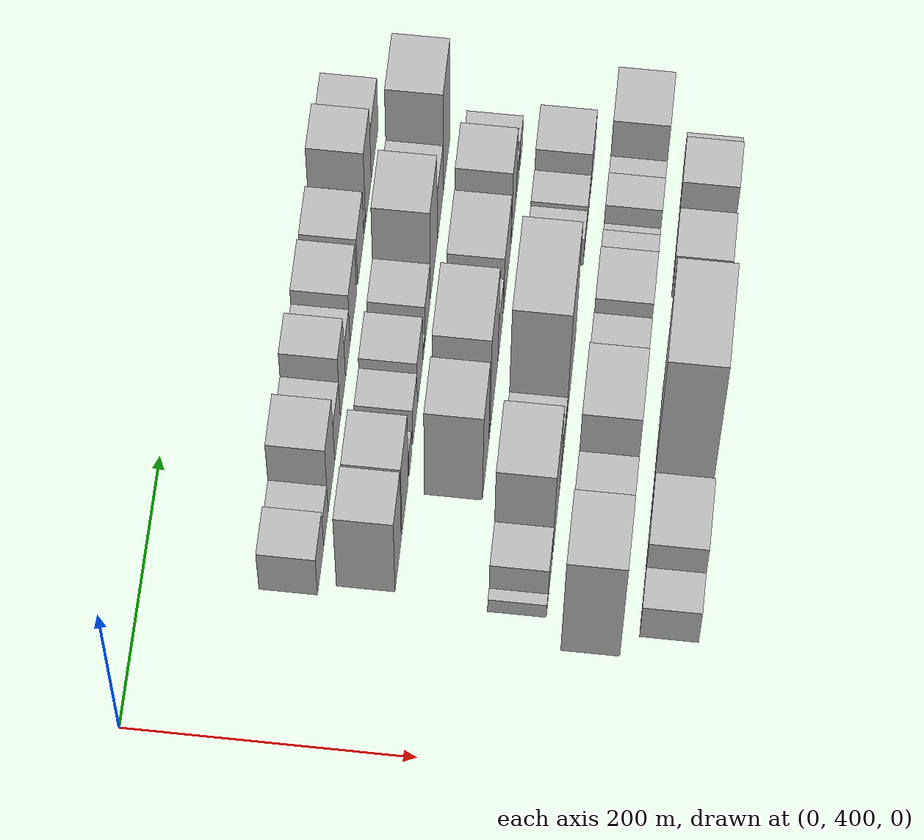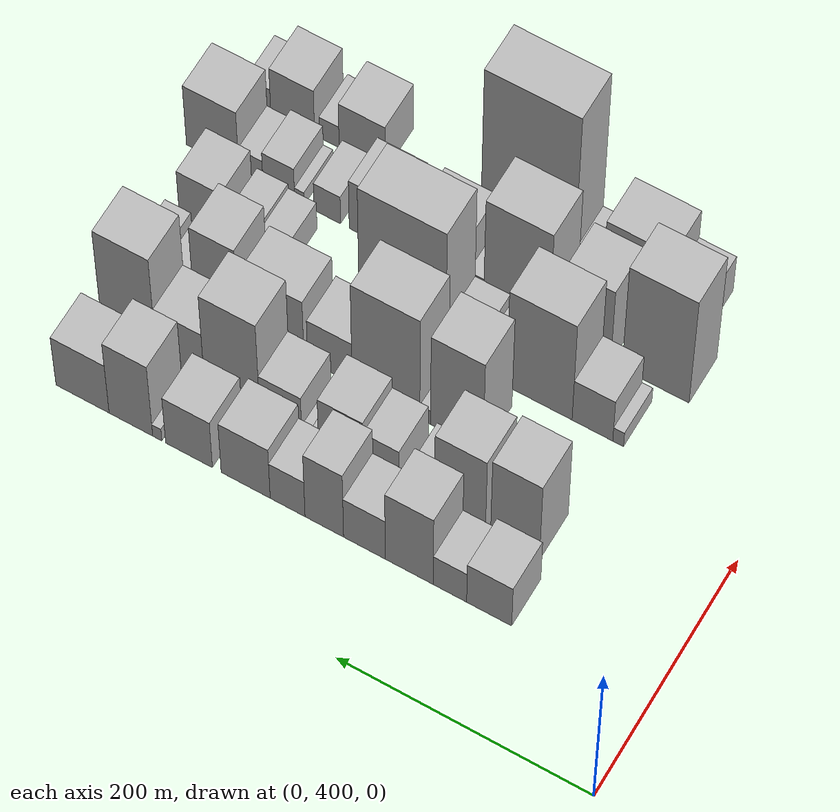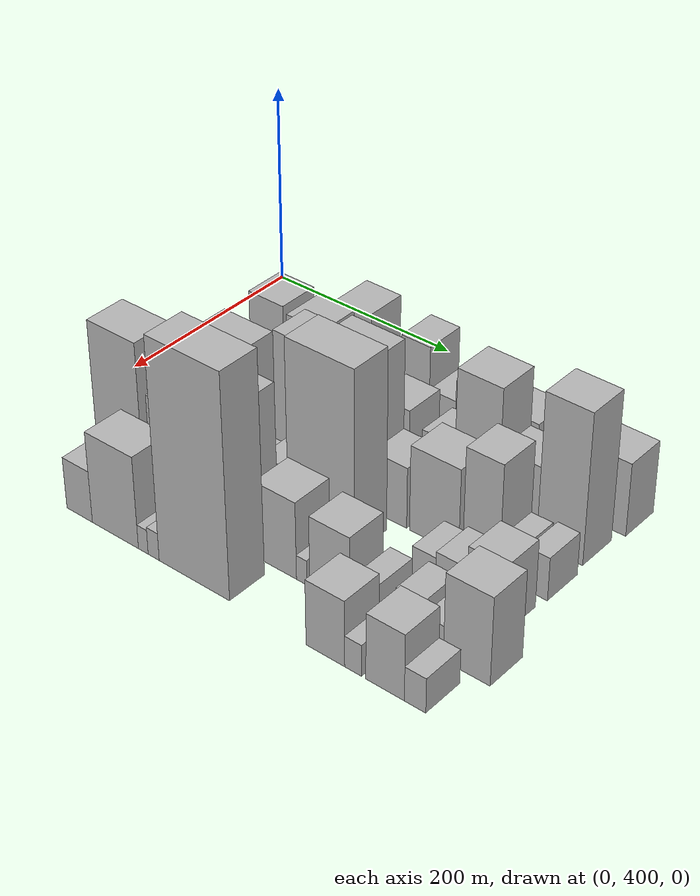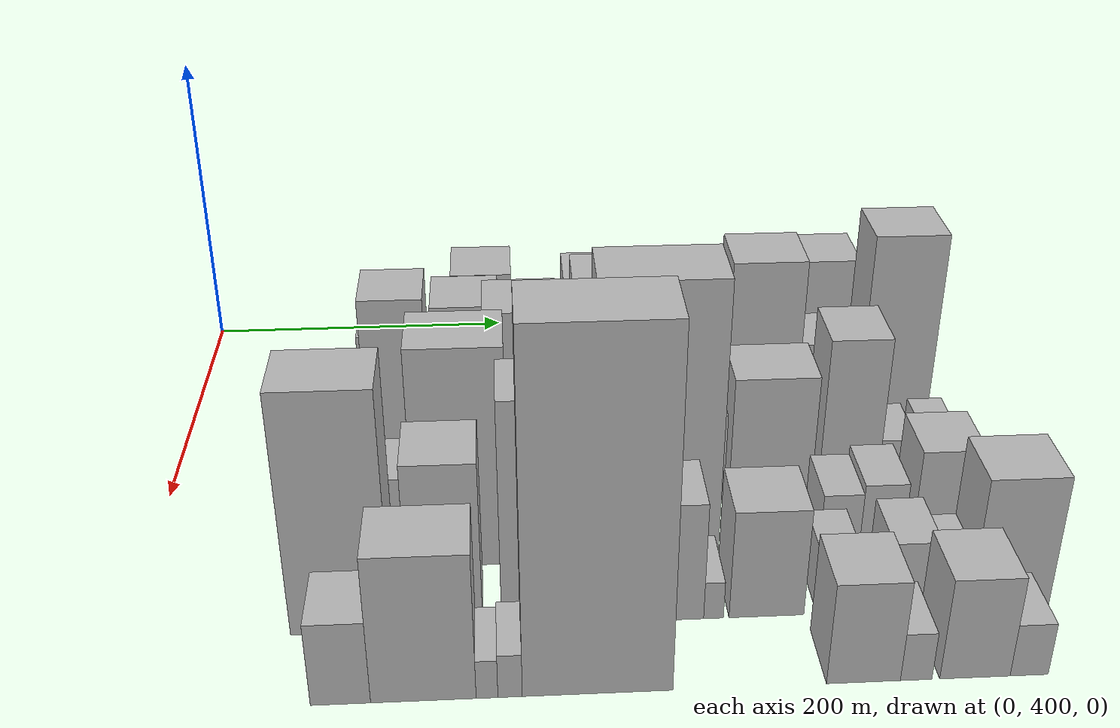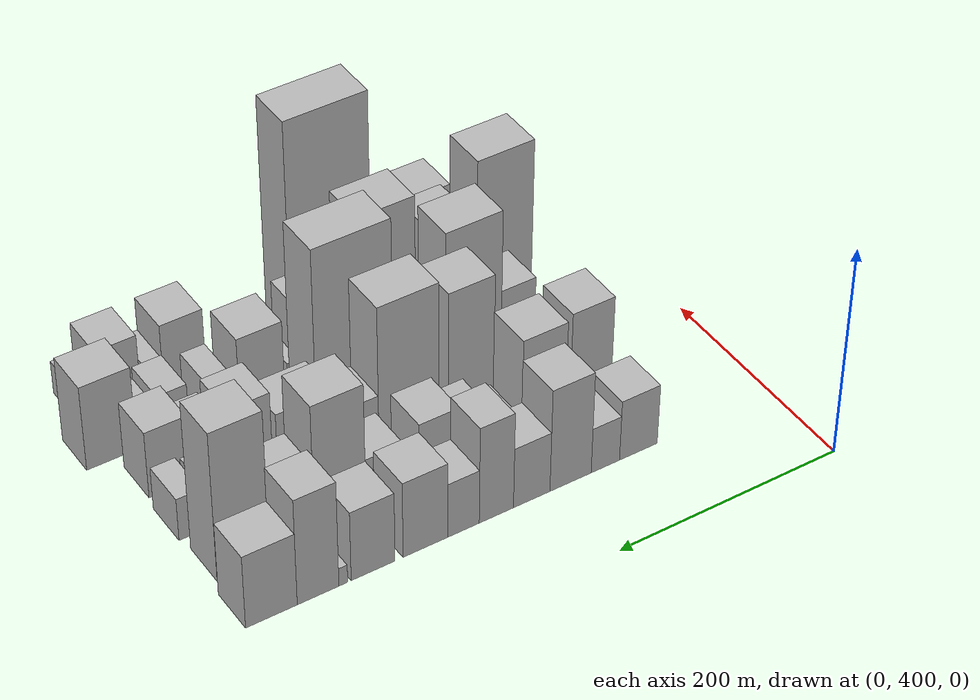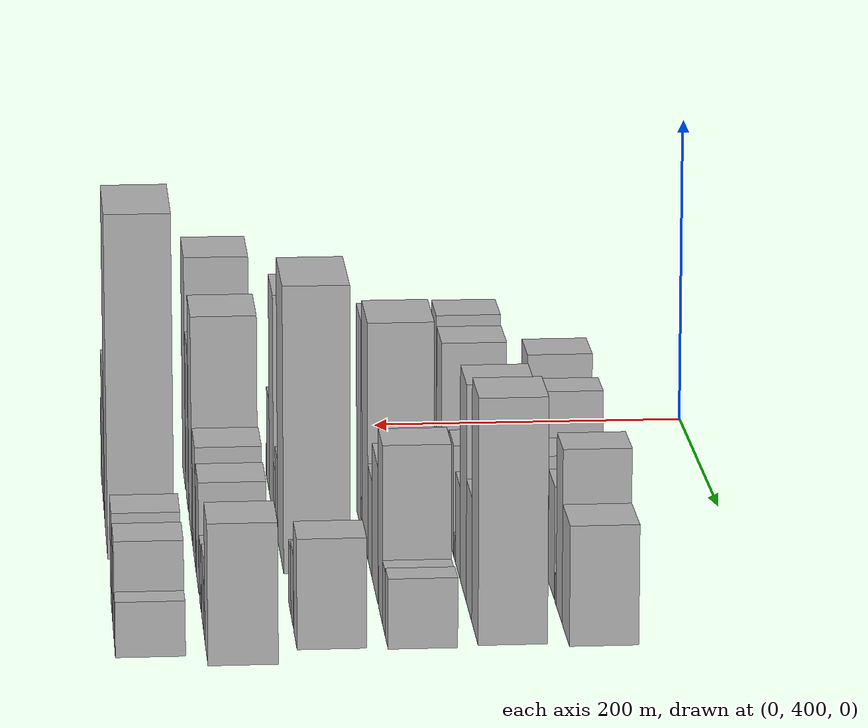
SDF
<sdf version="1.6">
 <world name="default">
  <model name="building_37">
   <static>1</static>
   <pose>100.0000 526.7805 0 0.000000 0.000000 0.000000</pose>
   <link name="link">
    <pose>0 0 30.00 0 0 0</pose>
    <collision name="collision"><geometry><box><size>40.0000 35.2316 60.0000</size></box></geometry></collision>
    <visual name="visual">
     <cast_shadows>0</cast_shadows>
     <geometry><box><size>40.0000 35.2316 60.0000</size></box></geometry>
     <material>
      <script>
       <uri>model://HANNAS_wall/materials/scripts</uri>
       <uri>model://HANNAS_wall/materials/textures</uri>
       <name>vrc/HANNAS_wall</name>
      </script>
     </material>
    </visual>
   </link>
  </model>
  <model name="building_38">
   <static>1</static>
   <pose>100.0000 557.5161 0 0.000000 0.000000 0.000000</pose>
   <link name="link">
    <pose>0 0 22.50 0 0 0</pose>
    <collision name="collision"><geometry><box><size>40.0000 26.2396 45.0000</size></box></geometry></collision>
    <visual name="visual">
     <cast_shadows>0</cast_shadows>
     <geometry><box><size>40.0000 26.2396 45.0000</size></box></geometry>
     <material>
      <script>
       <uri>model://HANNAS_wall/materials/scripts</uri>
       <uri>model://HANNAS_wall/materials/textures</uri>
       <name>vrc/HANNAS_wall</name>
      </script>
     </material>
    </visual>
   </link>
  </model>
  <model name="building_39">
   <static>1</static>
   <pose>100.0000 589.5145 0 0.000000 0.000000 0.000000</pose>
   <link name="link">
    <pose>0 0 51.00 0 0 0</pose>
    <collision name="collision"><geometry><box><size>40.0000 37.7572 102.0000</size></box></geometry></collision>
    <visual name="visual">
     <cast_shadows>0</cast_shadows>
     <geometry><box><size>40.0000 37.7572 102.0000</size></box></geometry>
     <material>
      <script>
       <uri>model://HANNAS_wall/materials/scripts</uri>
       <uri>model://HANNAS_wall/materials/textures</uri>
       <name>vrc/HANNAS_wall</name>
      </script>
     </material>
    </visual>
   </link>
  </model>
  <model name="building_40">
   <static>1</static>
   <pose>100.0000 624.8641 0 0.000000 0.000000 0.000000</pose>
   <link name="link">
    <pose>0 0 30.00 0 0 0</pose>
    <collision name="collision"><geometry><box><size>40.0000 32.9421 60.0000</size></box></geometry></collision>
    <visual name="visual">
     <cast_shadows>0</cast_shadows>
     <geometry><box><size>40.0000 32.9421 60.0000</size></box></geometry>
     <material>
      <script>
       <uri>model://HANNAS_wall/materials/scripts</uri>
       <uri>model://HANNAS_wall/materials/textures</uri>
       <name>vrc/HANNAS_wall</name>
      </script>
     </material>
    </visual>
   </link>
  </model>
  <model name="building_41">
   <static>1</static>
   <pose>100.0000 656.6407 0 0.000000 0.000000 0.000000</pose>
   <link name="link">
    <pose>0 0 48.00 0 0 0</pose>
    <collision name="collision"><geometry><box><size>40.0000 30.6110 96.0000</size></box></geometry></collision>
    <visual name="visual">
     <cast_shadows>0</cast_shadows>
     <geometry><box><size>40.0000 30.6110 96.0000</size></box></geometry>
     <material>
      <script>
       <uri>model://HANNAS_wall/materials/scripts</uri>
       <uri>model://HANNAS_wall/materials/textures</uri>
       <name>vrc/HANNAS_wall</name>
      </script>
     </material>
    </visual>
   </link>
  </model>
  <model name="building_42">
   <static>1</static>
   <pose>100.0000 685.8209 0 0.000000 0.000000 0.000000</pose>
   <link name="link">
    <pose>0 0 27.00 0 0 0</pose>
    <collision name="collision"><geometry><box><size>40.0000 27.7494 54.0000</size></box></geometry></collision>
    <visual name="visual">
     <cast_shadows>0</cast_shadows>
     <geometry><box><size>40.0000 27.7494 54.0000</size></box></geometry>
     <material>
      <script>
       <uri>model://HANNAS_wall/materials/scripts</uri>
       <uri>model://HANNAS_wall/materials/textures</uri>
       <name>vrc/HANNAS_wall</name>
      </script>
     </material>
    </visual>
   </link>
  </model>
  <model name="building_43">
   <static>1</static>
   <pose>100.0000 719.2941 0 0.000000 0.000000 0.000000</pose>
   <link name="link">
    <pose>0 0 37.50 0 0 0</pose>
    <collision name="collision"><geometry><box><size>40.0000 39.1970 75.0000</size></box></geometry></collision>
    <visual name="visual">
     <cast_shadows>0</cast_shadows>
     <geometry><box><size>40.0000 39.1970 75.0000</size></box></geometry>
     <material>
      <script>
       <uri>model://HANNAS_wall/materials/scripts</uri>
       <uri>model://HANNAS_wall/materials/textures</uri>
       <name>vrc/HANNAS_wall</name>
      </script>
     </material>
    </visual>
   </link>
  </model>
  <model name="building_44">
   <static>1</static>
   <pose>100.0000 764.7186 0 0.000000 0.000000 0.000000</pose>
   <link name="link">
    <pose>0 0 34.50 0 0 0</pose>
    <collision name="collision"><geometry><box><size>40.0000 37.6518 69.0000</size></box></geometry></collision>
    <visual name="visual">
     <cast_shadows>0</cast_shadows>
     <geometry><box><size>40.0000 37.6518 69.0000</size></box></geometry>
     <material>
      <script>
       <uri>model://HANNAS_wall/materials/scripts</uri>
       <uri>model://HANNAS_wall/materials/textures</uri>
       <name>vrc/HANNAS_wall</name>
      </script>
     </material>
    </visual>
   </link>
  </model>
  <model name="building_45">
   <static>1</static>
   <pose>100.0000 790.2598 0 0.000000 0.000000 0.000000</pose>
   <link name="link">
    <pose>0 0 9.00 0 0 0</pose>
    <collision name="collision"><geometry><box><size>40.0000 7.4306 18.0000</size></box></geometry></collision>
    <visual name="visual">
     <cast_shadows>0</cast_shadows>
     <geometry><box><size>40.0000 7.4306 18.0000</size></box></geometry>
     <material>
      <script>
       <uri>model://HANNAS_wall/materials/scripts</uri>
       <uri>model://HANNAS_wall/materials/textures</uri>
       <name>vrc/HANNAS_wall</name>
      </script>
     </material>
    </visual>
   </link>
  </model>
  <model name="building_46">
   <static>1</static>
   <pose>100.0000 811.5840 0 0.000000 0.000000 0.000000</pose>
   <link name="link">
    <pose>0 0 52.50 0 0 0</pose>
    <collision name="collision"><geometry><box><size>40.0000 35.2179 105.0000</size></box></geometry></collision>
    <visual name="visual">
     <cast_shadows>0</cast_shadows>
     <geometry><box><size>40.0000 35.2179 105.0000</size></box></geometry>
     <material>
      <script>
       <uri>model://HANNAS_wall/materials/scripts</uri>
       <uri>model://HANNAS_wall/materials/textures</uri>
       <name>vrc/HANNAS_wall</name>
      </script>
     </material>
    </visual>
   </link>
  </model>
  <model name="building_47">
   <static>1</static>
   <pose>100.0000 850.7482 0 0.000000 0.000000 0.000000</pose>
   <link name="link">
    <pose>0 0 36.00 0 0 0</pose>
    <collision name="collision"><geometry><box><size>40.0000 43.1106 72.0000</size></box></geometry></collision>
    <visual name="visual">
     <cast_shadows>0</cast_shadows>
     <geometry><box><size>40.0000 43.1106 72.0000</size></box></geometry>
     <material>
      <script>
       <uri>model://HANNAS_wall/materials/scripts</uri>
       <uri>model://HANNAS_wall/materials/textures</uri>
       <name>vrc/HANNAS_wall</name>
      </script>
     </material>
    </visual>
   </link>
  </model>
  <model name="building_89">
   <static>1</static>
   <pose>152.0000 536.2811 0 0.000000 0.000000 0.000000</pose>
   <link name="link">
    <pose>0 0 57.00 0 0 0</pose>
    <collision name="collision"><geometry><box><size>40.0000 38.4290 114.0000</size></box></geometry></collision>
    <visual name="visual">
     <cast_shadows>0</cast_shadows>
     <geometry><box><size>40.0000 38.4290 114.0000</size></box></geometry>
     <material>
      <script>
       <uri>model://HANNAS_wall/materials/scripts</uri>
       <uri>model://HANNAS_wall/materials/textures</uri>
       <name>vrc/HANNAS_wall</name>
      </script>
     </material>
    </visual>
   </link>
  </model>
  <model name="building_90">
   <static>1</static>
   <pose>152.0000 579.6024 0 0.000000 0.000000 0.000000</pose>
   <link name="link">
    <pose>0 0 54.00 0 0 0</pose>
    <collision name="collision"><geometry><box><size>40.0000 40.2136 108.0000</size></box></geometry></collision>
    <visual name="visual">
     <cast_shadows>0</cast_shadows>
     <geometry><box><size>40.0000 40.2136 108.0000</size></box></geometry>
     <material>
      <script>
       <uri>model://HANNAS_wall/materials/scripts</uri>
       <uri>model://HANNAS_wall/materials/textures</uri>
       <name>vrc/HANNAS_wall</name>
      </script>
     </material>
    </visual>
   </link>
  </model>
  <model name="building_91">
   <static>1</static>
   <pose>152.0000 611.7442 0 0.000000 0.000000 0.000000</pose>
   <link name="link">
    <pose>0 0 18.00 0 0 0</pose>
    <collision name="collision"><geometry><box><size>40.0000 18.0702 36.0000</size></box></geometry></collision>
    <visual name="visual">
     <cast_shadows>0</cast_shadows>
     <geometry><box><size>40.0000 18.0702 36.0000</size></box></geometry>
     <material>
      <script>
       <uri>model://HANNAS_wall/materials/scripts</uri>
       <uri>model://HANNAS_wall/materials/textures</uri>
       <name>vrc/HANNAS_wall</name>
      </script>
     </material>
    </visual>
   </link>
  </model>
  <model name="building_92">
   <static>1</static>
   <pose>152.0000 642.0185 0 0.000000 0.000000 0.000000</pose>
   <link name="link">
    <pose>0 0 27.00 0 0 0</pose>
    <collision name="collision"><geometry><box><size>40.0000 28.4783 54.0000</size></box></geometry></collision>
    <visual name="visual">
     <cast_shadows>0</cast_shadows>
     <geometry><box><size>40.0000 28.4783 54.0000</size></box></geometry>
     <material>
      <script>
       <uri>model://HANNAS_wall/materials/scripts</uri>
       <uri>model://HANNAS_wall/materials/textures</uri>
       <name>vrc/HANNAS_wall</name>
      </script>
     </material>
    </visual>
   </link>
  </model>
  <model name="building_93">
   <static>1</static>
   <pose>152.0000 674.0964 0 0.000000 0.000000 0.000000</pose>
   <link name="link">
    <pose>0 0 34.50 0 0 0</pose>
    <collision name="collision"><geometry><box><size>40.0000 35.6775 69.0000</size></box></geometry></collision>
    <visual name="visual">
     <cast_shadows>0</cast_shadows>
     <geometry><box><size>40.0000 35.6775 69.0000</size></box></geometry>
     <material>
      <script>
       <uri>model://HANNAS_wall/materials/scripts</uri>
       <uri>model://HANNAS_wall/materials/textures</uri>
       <name>vrc/HANNAS_wall</name>
      </script>
     </material>
    </visual>
   </link>
  </model>
  <model name="building_94">
   <static>1</static>
   <pose>152.0000 695.2115 0 0.000000 0.000000 0.000000</pose>
   <link name="link">
    <pose>0 0 7.50 0 0 0</pose>
    <collision name="collision"><geometry><box><size>40.0000 6.5528 15.0000</size></box></geometry></collision>
    <visual name="visual">
     <cast_shadows>0</cast_shadows>
     <geometry><box><size>40.0000 6.5528 15.0000</size></box></geometry>
     <material>
      <script>
       <uri>model://HANNAS_wall/materials/scripts</uri>
       <uri>model://HANNAS_wall/materials/textures</uri>
       <name>vrc/HANNAS_wall</name>
      </script>
     </material>
    </visual>
   </link>
  </model>
  <model name="building_95">
   <static>1</static>
   <pose>152.0000 701.9124 0 0.000000 0.000000 0.000000</pose>
   <link name="link">
    <pose>0 0 7.50 0 0 0</pose>
    <collision name="collision"><geometry><box><size>40.0000 6.8491 15.0000</size></box></geometry></collision>
    <visual name="visual">
     <cast_shadows>0</cast_shadows>
     <geometry><box><size>40.0000 6.8491 15.0000</size></box></geometry>
     <material>
      <script>
       <uri>model://HANNAS_wall/materials/scripts</uri>
       <uri>model://HANNAS_wall/materials/textures</uri>
       <name>vrc/HANNAS_wall</name>
      </script>
     </material>
    </visual>
   </link>
  </model>
  <model name="building_96">
   <static>1</static>
   <pose>152.0000 722.1935 0 0.000000 0.000000 0.000000</pose>
   <link name="link">
    <pose>0 0 28.50 0 0 0</pose>
    <collision name="collision"><geometry><box><size>40.0000 33.7131 57.0000</size></box></geometry></collision>
    <visual name="visual">
     <cast_shadows>0</cast_shadows>
     <geometry><box><size>40.0000 33.7131 57.0000</size></box></geometry>
     <material>
      <script>
       <uri>model://HANNAS_wall/materials/scripts</uri>
       <uri>model://HANNAS_wall/materials/textures</uri>
       <name>vrc/HANNAS_wall</name>
      </script>
     </material>
    </visual>
   </link>
  </model>
  <model name="building_97">
   <static>1</static>
   <pose>152.0000 761.3562 0 0.000000 0.000000 0.000000</pose>
   <link name="link">
    <pose>0 0 66.00 0 0 0</pose>
    <collision name="collision"><geometry><box><size>40.0000 44.6124 132.0000</size></box></geometry></collision>
    <visual name="visual">
     <cast_shadows>0</cast_shadows>
     <geometry><box><size>40.0000 44.6124 132.0000</size></box></geometry>
     <material>
      <script>
       <uri>model://HANNAS_wall/materials/scripts</uri>
       <uri>model://HANNAS_wall/materials/textures</uri>
       <name>vrc/HANNAS_wall</name>
      </script>
     </material>
    </visual>
   </link>
  </model>
  <model name="building_98">
   <static>1</static>
   <pose>152.0000 802.9893 0 0.000000 0.000000 0.000000</pose>
   <link name="link">
    <pose>0 0 37.50 0 0 0</pose>
    <collision name="collision"><geometry><box><size>40.0000 38.6537 75.0000</size></box></geometry></collision>
    <visual name="visual">
     <cast_shadows>0</cast_shadows>
     <geometry><box><size>40.0000 38.6537 75.0000</size></box></geometry>
     <material>
      <script>
       <uri>model://HANNAS_wall/materials/scripts</uri>
       <uri>model://HANNAS_wall/materials/textures</uri>
       <name>vrc/HANNAS_wall</name>
      </script>
     </material>
    </visual>
   </link>
  </model>
  <model name="building_99">
   <static>1</static>
   <pose>152.0000 844.4540 0 0.000000 0.000000 0.000000</pose>
   <link name="link">
    <pose>0 0 73.50 0 0 0</pose>
    <collision name="collision"><geometry><box><size>40.0000 44.2758 147.0000</size></box></geometry></collision>
    <visual name="visual">
     <cast_shadows>0</cast_shadows>
     <geometry><box><size>40.0000 44.2758 147.0000</size></box></geometry>
     <material>
      <script>
       <uri>model://HANNAS_wall/materials/scripts</uri>
       <uri>model://HANNAS_wall/materials/textures</uri>
       <name>vrc/HANNAS_wall</name>
      </script>
     </material>
    </visual>
   </link>
  </model>
  <model name="building_144">
   <static>1</static>
   <pose>204.0000 612.0399 0 0.000000 0.000000 0.000000</pose>
   <link name="link">
    <pose>0 0 66.00 0 0 0</pose>
    <collision name="collision"><geometry><box><size>40.0000 41.8282 132.0000</size></box></geometry></collision>
    <visual name="visual">
     <cast_shadows>0</cast_shadows>
     <geometry><box><size>40.0000 41.8282 132.0000</size></box></geometry>
     <material>
      <script>
       <uri>model://HANNAS_wall/materials/scripts</uri>
       <uri>model://HANNAS_wall/materials/textures</uri>
       <name>vrc/HANNAS_wall</name>
      </script>
     </material>
    </visual>
   </link>
  </model>
  <model name="building_145">
   <static>1</static>
   <pose>204.0000 637.1985 0 0.000000 0.000000 0.000000</pose>
   <link name="link">
    <pose>0 0 10.50 0 0 0</pose>
    <collision name="collision"><geometry><box><size>40.0000 8.4888 21.0000</size></box></geometry></collision>
    <visual name="visual">
     <cast_shadows>0</cast_shadows>
     <geometry><box><size>40.0000 8.4888 21.0000</size></box></geometry>
     <material>
      <script>
       <uri>model://HANNAS_wall/materials/scripts</uri>
       <uri>model://HANNAS_wall/materials/textures</uri>
       <name>vrc/HANNAS_wall</name>
      </script>
     </material>
    </visual>
   </link>
  </model>
  <model name="building_146">
   <static>1</static>
   <pose>204.0000 668.5517 0 0.000000 0.000000 0.000000</pose>
   <link name="link">
    <pose>0 0 73.50 0 0 0</pose>
    <collision name="collision"><geometry><box><size>40.0000 54.2176 147.0000</size></box></geometry></collision>
    <visual name="visual">
     <cast_shadows>0</cast_shadows>
     <geometry><box><size>40.0000 54.2176 147.0000</size></box></geometry>
     <material>
      <script>
       <uri>model://HANNAS_wall/materials/scripts</uri>
       <uri>model://HANNAS_wall/materials/textures</uri>
       <name>vrc/HANNAS_wall</name>
      </script>
     </material>
    </visual>
   </link>
  </model>
  <model name="building_147">
   <static>1</static>
   <pose>204.0000 713.5334 0 0.000000 0.000000 0.000000</pose>
   <link name="link">
    <pose>0 0 30.00 0 0 0</pose>
    <collision name="collision"><geometry><box><size>40.0000 35.7460 60.0000</size></box></geometry></collision>
    <visual name="visual">
     <cast_shadows>0</cast_shadows>
     <geometry><box><size>40.0000 35.7460 60.0000</size></box></geometry>
     <material>
      <script>
       <uri>model://HANNAS_wall/materials/scripts</uri>
       <uri>model://HANNAS_wall/materials/textures</uri>
       <name>vrc/HANNAS_wall</name>
      </script>
     </material>
    </visual>
   </link>
  </model>
  <model name="building_148">
   <static>1</static>
   <pose>204.0000 759.1979 0 0.000000 0.000000 0.000000</pose>
   <link name="link">
    <pose>0 0 42.00 0 0 0</pose>
    <collision name="collision"><geometry><box><size>40.0000 49.5830 84.0000</size></box></geometry></collision>
    <visual name="visual">
     <cast_shadows>0</cast_shadows>
     <geometry><box><size>40.0000 49.5830 84.0000</size></box></geometry>
     <material>
      <script>
       <uri>model://HANNAS_wall/materials/scripts</uri>
       <uri>model://HANNAS_wall/materials/textures</uri>
       <name>vrc/HANNAS_wall</name>
      </script>
     </material>
    </visual>
   </link>
  </model>
  <model name="building_149">
   <static>1</static>
   <pose>204.0000 805.9090 0 0.000000 0.000000 0.000000</pose>
   <link name="link">
    <pose>0 0 54.00 0 0 0</pose>
    <collision name="collision"><geometry><box><size>40.0000 35.8390 108.0000</size></box></geometry></collision>
    <visual name="visual">
     <cast_shadows>0</cast_shadows>
     <geometry><box><size>40.0000 35.8390 108.0000</size></box></geometry>
     <material>
      <script>
       <uri>model://HANNAS_wall/materials/scripts</uri>
       <uri>model://HANNAS_wall/materials/textures</uri>
       <name>vrc/HANNAS_wall</name>
      </script>
     </material>
    </visual>
   </link>
  </model>
  <model name="building_150">
   <static>1</static>
   <pose>204.0000 834.2644 0 0.000000 0.000000 0.000000</pose>
   <link name="link">
    <pose>0 0 19.50 0 0 0</pose>
    <collision name="collision"><geometry><box><size>40.0000 20.8718 39.0000</size></box></geometry></collision>
    <visual name="visual">
     <cast_shadows>0</cast_shadows>
     <geometry><box><size>40.0000 20.8718 39.0000</size></box></geometry>
     <material>
      <script>
       <uri>model://HANNAS_wall/materials/scripts</uri>
       <uri>model://HANNAS_wall/materials/textures</uri>
       <name>vrc/HANNAS_wall</name>
      </script>
     </material>
    </visual>
   </link>
  </model>
  <model name="building_151">
   <static>1</static>
   <pose>204.0000 859.2521 0 0.000000 0.000000 0.000000</pose>
   <link name="link">
    <pose>0 0 21.00 0 0 0</pose>
    <collision name="collision"><geometry><box><size>40.0000 21.1034 42.0000</size></box></geometry></collision>
    <visual name="visual">
     <cast_shadows>0</cast_shadows>
     <geometry><box><size>40.0000 21.1034 42.0000</size></box></geometry>
     <material>
      <script>
       <uri>model://HANNAS_wall/materials/scripts</uri>
       <uri>model://HANNAS_wall/materials/textures</uri>
       <name>vrc/HANNAS_wall</name>
      </script>
     </material>
    </visual>
   </link>
  </model>
  <model name="building_191">
   <static>1</static>
   <pose>256.0000 513.7022 0 0.000000 0.000000 0.000000</pose>
   <link name="link">
    <pose>0 0 10.50 0 0 0</pose>
    <collision name="collision"><geometry><box><size>40.0000 8.5403 21.0000</size></box></geometry></collision>
    <visual name="visual">
     <cast_shadows>0</cast_shadows>
     <geometry><box><size>40.0000 8.5403 21.0000</size></box></geometry>
     <material>
      <script>
       <uri>model://HANNAS_wall/materials/scripts</uri>
       <uri>model://HANNAS_wall/materials/textures</uri>
       <name>vrc/HANNAS_wall</name>
      </script>
     </material>
    </visual>
   </link>
  </model>
  <model name="building_192">
   <static>1</static>
   <pose>256.0000 534.0623 0 0.000000 0.000000 0.000000</pose>
   <link name="link">
    <pose>0 0 30.00 0 0 0</pose>
    <collision name="collision"><geometry><box><size>40.0000 32.1798 60.0000</size></box></geometry></collision>
    <visual name="visual">
     <cast_shadows>0</cast_shadows>
     <geometry><box><size>40.0000 32.1798 60.0000</size></box></geometry>
     <material>
      <script>
       <uri>model://HANNAS_wall/materials/scripts</uri>
       <uri>model://HANNAS_wall/materials/textures</uri>
       <name>vrc/HANNAS_wall</name>
      </script>
     </material>
    </visual>
   </link>
  </model>
  <model name="building_193">
   <static>1</static>
   <pose>256.0000 576.2401 0 0.000000 0.000000 0.000000</pose>
   <link name="link">
    <pose>0 0 70.50 0 0 0</pose>
    <collision name="collision"><geometry><box><size>40.0000 52.1758 141.0000</size></box></geometry></collision>
    <visual name="visual">
     <cast_shadows>0</cast_shadows>
     <geometry><box><size>40.0000 52.1758 141.0000</size></box></geometry>
     <material>
      <script>
       <uri>model://HANNAS_wall/materials/scripts</uri>
       <uri>model://HANNAS_wall/materials/textures</uri>
       <name>vrc/HANNAS_wall</name>
      </script>
     </material>
    </visual>
   </link>
  </model>
  <model name="building_194">
   <static>1</static>
   <pose>256.0000 612.5407 0 0.000000 0.000000 0.000000</pose>
   <link name="link">
    <pose>0 0 18.00 0 0 0</pose>
    <collision name="collision"><geometry><box><size>40.0000 20.4254 36.0000</size></box></geometry></collision>
    <visual name="visual">
     <cast_shadows>0</cast_shadows>
     <geometry><box><size>40.0000 20.4254 36.0000</size></box></geometry>
     <material>
      <script>
       <uri>model://HANNAS_wall/materials/scripts</uri>
       <uri>model://HANNAS_wall/materials/textures</uri>
       <name>vrc/HANNAS_wall</name>
      </script>
     </material>
    </visual>
   </link>
  </model>
  <model name="building_195">
   <static>1</static>
   <pose>256.0000 636.8043 0 0.000000 0.000000 0.000000</pose>
   <link name="link">
    <pose>0 0 25.50 0 0 0</pose>
    <collision name="collision"><geometry><box><size>40.0000 28.1018 51.0000</size></box></geometry></collision>
    <visual name="visual">
     <cast_shadows>0</cast_shadows>
     <geometry><box><size>40.0000 28.1018 51.0000</size></box></geometry>
     <material>
      <script>
       <uri>model://HANNAS_wall/materials/scripts</uri>
       <uri>model://HANNAS_wall/materials/textures</uri>
       <name>vrc/HANNAS_wall</name>
      </script>
     </material>
    </visual>
   </link>
  </model>
  <model name="building_196">
   <static>1</static>
   <pose>256.0000 685.6566 0 0.000000 0.000000 0.000000</pose>
   <link name="link">
    <pose>0 0 88.50 0 0 0</pose>
    <collision name="collision"><geometry><box><size>40.0000 69.6027 177.0000</size></box></geometry></collision>
    <visual name="visual">
     <cast_shadows>0</cast_shadows>
     <geometry><box><size>40.0000 69.6027 177.0000</size></box></geometry>
     <material>
      <script>
       <uri>model://HANNAS_wall/materials/scripts</uri>
       <uri>model://HANNAS_wall/materials/textures</uri>
       <name>vrc/HANNAS_wall</name>
      </script>
     </material>
    </visual>
   </link>
  </model>
  <model name="building_197">
   <static>1</static>
   <pose>256.0000 789.6797 0 0.000000 0.000000 0.000000</pose>
   <link name="link">
    <pose>0 0 19.50 0 0 0</pose>
    <collision name="collision"><geometry><box><size>40.0000 22.8145 39.0000</size></box></geometry></collision>
    <visual name="visual">
     <cast_shadows>0</cast_shadows>
     <geometry><box><size>40.0000 22.8145 39.0000</size></box></geometry>
     <material>
      <script>
       <uri>model://HANNAS_wall/materials/scripts</uri>
       <uri>model://HANNAS_wall/materials/textures</uri>
       <name>vrc/HANNAS_wall</name>
      </script>
     </material>
    </visual>
   </link>
  </model>
  <model name="building_198">
   <static>1</static>
   <pose>256.0000 813.6329 0 0.000000 0.000000 0.000000</pose>
   <link name="link">
    <pose>0 0 22.50 0 0 0</pose>
    <collision name="collision"><geometry><box><size>40.0000 25.0918 45.0000</size></box></geometry></collision>
    <visual name="visual">
     <cast_shadows>0</cast_shadows>
     <geometry><box><size>40.0000 25.0918 45.0000</size></box></geometry>
     <material>
      <script>
       <uri>model://HANNAS_wall/materials/scripts</uri>
       <uri>model://HANNAS_wall/materials/textures</uri>
       <name>vrc/HANNAS_wall</name>
      </script>
     </material>
    </visual>
   </link>
  </model>
  <model name="building_199">
   <static>1</static>
   <pose>256.0000 849.0650 0 0.000000 0.000000 0.000000</pose>
   <link name="link">
    <pose>0 0 33.00 0 0 0</pose>
    <collision name="collision"><geometry><box><size>40.0000 35.7724 66.0000</size></box></geometry></collision>
    <visual name="visual">
     <cast_shadows>0</cast_shadows>
     <geometry><box><size>40.0000 35.7724 66.0000</size></box></geometry>
     <material>
      <script>
       <uri>model://HANNAS_wall/materials/scripts</uri>
       <uri>model://HANNAS_wall/materials/textures</uri>
       <name>vrc/HANNAS_wall</name>
      </script>
     </material>
    </visual>
   </link>
  </model>
  <model name="building_240">
   <static>1</static>
   <pose>308.0000 513.1918 0 0.000000 0.000000 0.000000</pose>
   <link name="link">
    <pose>0 0 75.00 0 0 0</pose>
    <collision name="collision"><geometry><box><size>40.0000 53.0587 150.0000</size></box></geometry></collision>
    <visual name="visual">
     <cast_shadows>0</cast_shadows>
     <geometry><box><size>40.0000 53.0587 150.0000</size></box></geometry>
     <material>
      <script>
       <uri>model://HANNAS_wall/materials/scripts</uri>
       <uri>model://HANNAS_wall/materials/textures</uri>
       <name>vrc/HANNAS_wall</name>
      </script>
     </material>
    </visual>
   </link>
  </model>
  <model name="building_241">
   <static>1</static>
   <pose>308.0000 568.1532 0 0.000000 0.000000 0.000000</pose>
   <link name="link">
    <pose>0 0 52.50 0 0 0</pose>
    <collision name="collision"><geometry><box><size>40.0000 38.8642 105.0000</size></box></geometry></collision>
    <visual name="visual">
     <cast_shadows>0</cast_shadows>
     <geometry><box><size>40.0000 38.8642 105.0000</size></box></geometry>
     <material>
      <script>
       <uri>model://HANNAS_wall/materials/scripts</uri>
       <uri>model://HANNAS_wall/materials/textures</uri>
       <name>vrc/HANNAS_wall</name>
      </script>
     </material>
    </visual>
   </link>
  </model>
  <model name="building_242">
   <static>1</static>
   <pose>308.0000 623.9515 0 0.000000 0.000000 0.000000</pose>
   <link name="link">
    <pose>0 0 70.50 0 0 0</pose>
    <collision name="collision"><geometry><box><size>40.0000 52.7324 141.0000</size></box></geometry></collision>
    <visual name="visual">
     <cast_shadows>0</cast_shadows>
     <geometry><box><size>40.0000 52.7324 141.0000</size></box></geometry>
     <material>
      <script>
       <uri>model://HANNAS_wall/materials/scripts</uri>
       <uri>model://HANNAS_wall/materials/textures</uri>
       <name>vrc/HANNAS_wall</name>
      </script>
     </material>
    </visual>
   </link>
  </model>
  <model name="building_243">
   <static>1</static>
   <pose>308.0000 656.5839 0 0.000000 0.000000 0.000000</pose>
   <link name="link">
    <pose>0 0 13.50 0 0 0</pose>
    <collision name="collision"><geometry><box><size>40.0000 12.5324 27.0000</size></box></geometry></collision>
    <visual name="visual">
     <cast_shadows>0</cast_shadows>
     <geometry><box><size>40.0000 12.5324 27.0000</size></box></geometry>
     <material>
      <script>
       <uri>model://HANNAS_wall/materials/scripts</uri>
       <uri>model://HANNAS_wall/materials/textures</uri>
       <name>vrc/HANNAS_wall</name>
      </script>
     </material>
    </visual>
   </link>
  </model>
  <model name="building_244">
   <static>1</static>
   <pose>308.0000 683.9909 0 0.000000 0.000000 0.000000</pose>
   <link name="link">
    <pose>0 0 37.50 0 0 0</pose>
    <collision name="collision"><geometry><box><size>40.0000 42.2815 75.0000</size></box></geometry></collision>
    <visual name="visual">
     <cast_shadows>0</cast_shadows>
     <geometry><box><size>40.0000 42.2815 75.0000</size></box></geometry>
     <material>
      <script>
       <uri>model://HANNAS_wall/materials/scripts</uri>
       <uri>model://HANNAS_wall/materials/textures</uri>
       <name>vrc/HANNAS_wall</name>
      </script>
     </material>
    </visual>
   </link>
  </model>
  <model name="building_245">
   <static>1</static>
   <pose>308.0000 710.4468 0 0.000000 0.000000 0.000000</pose>
   <link name="link">
    <pose>0 0 12.00 0 0 0</pose>
    <collision name="collision"><geometry><box><size>40.0000 10.6301 24.0000</size></box></geometry></collision>
    <visual name="visual">
     <cast_shadows>0</cast_shadows>
     <geometry><box><size>40.0000 10.6301 24.0000</size></box></geometry>
     <material>
      <script>
       <uri>model://HANNAS_wall/materials/scripts</uri>
       <uri>model://HANNAS_wall/materials/textures</uri>
       <name>vrc/HANNAS_wall</name>
      </script>
     </material>
    </visual>
   </link>
  </model>
  <model name="building_246">
   <static>1</static>
   <pose>308.0000 738.9353 0 0.000000 0.000000 0.000000</pose>
   <link name="link">
    <pose>0 0 34.50 0 0 0</pose>
    <collision name="collision"><geometry><box><size>40.0000 40.3470 69.0000</size></box></geometry></collision>
    <visual name="visual">
     <cast_shadows>0</cast_shadows>
     <geometry><box><size>40.0000 40.3470 69.0000</size></box></geometry>
     <material>
      <script>
       <uri>model://HANNAS_wall/materials/scripts</uri>
       <uri>model://HANNAS_wall/materials/textures</uri>
       <name>vrc/HANNAS_wall</name>
      </script>
     </material>
    </visual>
   </link>
  </model>
  <model name="building_247">
   <static>1</static>
   <pose>308.0000 776.9522 0 0.000000 0.000000 0.000000</pose>
   <link name="link">
    <pose>0 0 19.50 0 0 0</pose>
    <collision name="collision"><geometry><box><size>40.0000 21.6867 39.0000</size></box></geometry></collision>
    <visual name="visual">
     <cast_shadows>0</cast_shadows>
     <geometry><box><size>40.0000 21.6867 39.0000</size></box></geometry>
     <material>
      <script>
       <uri>model://HANNAS_wall/materials/scripts</uri>
       <uri>model://HANNAS_wall/materials/textures</uri>
       <name>vrc/HANNAS_wall</name>
      </script>
     </material>
    </visual>
   </link>
  </model>
  <model name="building_248">
   <static>1</static>
   <pose>308.0000 799.7443 0 0.000000 0.000000 0.000000</pose>
   <link name="link">
    <pose>0 0 9.00 0 0 0</pose>
    <collision name="collision"><geometry><box><size>40.0000 7.8976 18.0000</size></box></geometry></collision>
    <visual name="visual">
     <cast_shadows>0</cast_shadows>
     <geometry><box><size>40.0000 7.8976 18.0000</size></box></geometry>
     <material>
      <script>
       <uri>model://HANNAS_wall/materials/scripts</uri>
       <uri>model://HANNAS_wall/materials/textures</uri>
       <name>vrc/HANNAS_wall</name>
      </script>
     </material>
    </visual>
   </link>
  </model>
  <model name="building_249">
   <static>1</static>
   <pose>308.0000 816.6776 0 0.000000 0.000000 0.000000</pose>
   <link name="link">
    <pose>0 0 22.50 0 0 0</pose>
    <collision name="collision"><geometry><box><size>40.0000 25.9689 45.0000</size></box></geometry></collision>
    <visual name="visual">
     <cast_shadows>0</cast_shadows>
     <geometry><box><size>40.0000 25.9689 45.0000</size></box></geometry>
     <material>
      <script>
       <uri>model://HANNAS_wall/materials/scripts</uri>
       <uri>model://HANNAS_wall/materials/textures</uri>
       <name>vrc/HANNAS_wall</name>
      </script>
     </material>
    </visual>
   </link>
  </model>
  <model name="building_250">
   <static>1</static>
   <pose>308.0000 839.5619 0 0.000000 0.000000 0.000000</pose>
   <link name="link">
    <pose>0 0 16.50 0 0 0</pose>
    <collision name="collision"><geometry><box><size>40.0000 19.7997 33.0000</size></box></geometry></collision>
    <visual name="visual">
     <cast_shadows>0</cast_shadows>
     <geometry><box><size>40.0000 19.7997 33.0000</size></box></geometry>
     <material>
      <script>
       <uri>model://HANNAS_wall/materials/scripts</uri>
       <uri>model://HANNAS_wall/materials/textures</uri>
       <name>vrc/HANNAS_wall</name>
      </script>
     </material>
    </visual>
   </link>
  </model>
  <model name="building_251">
   <static>1</static>
   <pose>308.0000 871.0681 0 0.000000 0.000000 0.000000</pose>
   <link name="link">
    <pose>0 0 42.00 0 0 0</pose>
    <collision name="collision"><geometry><box><size>40.0000 43.2126 84.0000</size></box></geometry></collision>
    <visual name="visual">
     <cast_shadows>0</cast_shadows>
     <geometry><box><size>40.0000 43.2126 84.0000</size></box></geometry>
     <material>
      <script>
       <uri>model://HANNAS_wall/materials/scripts</uri>
       <uri>model://HANNAS_wall/materials/textures</uri>
       <name>vrc/HANNAS_wall</name>
      </script>
     </material>
    </visual>
   </link>
  </model>
  <model name="building_294">
   <static>1</static>
   <pose>360.0000 517.1475 0 0.000000 0.000000 0.000000</pose>
   <link name="link">
    <pose>0 0 25.50 0 0 0</pose>
    <collision name="collision"><geometry><box><size>40.0000 29.6366 51.0000</size></box></geometry></collision>
    <visual name="visual">
     <cast_shadows>0</cast_shadows>
     <geometry><box><size>40.0000 29.6366 51.0000</size></box></geometry>
     <material>
      <script>
       <uri>model://HANNAS_wall/materials/scripts</uri>
       <uri>model://HANNAS_wall/materials/textures</uri>
       <name>vrc/HANNAS_wall</name>
      </script>
     </material>
    </visual>
   </link>
  </model>
  <model name="building_295">
   <static>1</static>
   <pose>360.0000 558.0658 0 0.000000 0.000000 0.000000</pose>
   <link name="link">
    <pose>0 0 45.00 0 0 0</pose>
    <collision name="collision"><geometry><box><size>40.0000 52.1999 90.0000</size></box></geometry></collision>
    <visual name="visual">
     <cast_shadows>0</cast_shadows>
     <geometry><box><size>40.0000 52.1999 90.0000</size></box></geometry>
     <material>
      <script>
       <uri>model://HANNAS_wall/materials/scripts</uri>
       <uri>model://HANNAS_wall/materials/textures</uri>
       <name>vrc/HANNAS_wall</name>
      </script>
     </material>
    </visual>
   </link>
  </model>
  <model name="building_296">
   <static>1</static>
   <pose>360.0000 589.5629 0 0.000000 0.000000 0.000000</pose>
   <link name="link">
    <pose>0 0 12.00 0 0 0</pose>
    <collision name="collision"><geometry><box><size>40.0000 10.7945 24.0000</size></box></geometry></collision>
    <visual name="visual">
     <cast_shadows>0</cast_shadows>
     <geometry><box><size>40.0000 10.7945 24.0000</size></box></geometry>
     <material>
      <script>
       <uri>model://HANNAS_wall/materials/scripts</uri>
       <uri>model://HANNAS_wall/materials/textures</uri>
       <name>vrc/HANNAS_wall</name>
      </script>
     </material>
    </visual>
   </link>
  </model>
  <model name="building_297">
   <static>1</static>
   <pose>360.0000 601.0295 0 0.000000 0.000000 0.000000</pose>
   <link name="link">
    <pose>0 0 13.50 0 0 0</pose>
    <collision name="collision"><geometry><box><size>40.0000 12.1386 27.0000</size></box></geometry></collision>
    <visual name="visual">
     <cast_shadows>0</cast_shadows>
     <geometry><box><size>40.0000 12.1386 27.0000</size></box></geometry>
     <material>
      <script>
       <uri>model://HANNAS_wall/materials/scripts</uri>
       <uri>model://HANNAS_wall/materials/textures</uri>
       <name>vrc/HANNAS_wall</name>
      </script>
     </material>
    </visual>
   </link>
  </model>
  <model name="building_298">
   <static>1</static>
   <pose>360.0000 644.7817 0 0.000000 0.000000 0.000000</pose>
   <link name="link">
    <pose>0 0 106.50 0 0 0</pose>
    <collision name="collision"><geometry><box><size>40.0000 75.3659 213.0000</size></box></geometry></collision>
    <visual name="visual">
     <cast_shadows>0</cast_shadows>
     <geometry><box><size>40.0000 75.3659 213.0000</size></box></geometry>
     <material>
      <script>
       <uri>model://HANNAS_wall/materials/scripts</uri>
       <uri>model://HANNAS_wall/materials/textures</uri>
       <name>vrc/HANNAS_wall</name>
      </script>
     </material>
    </visual>
   </link>
  </model>
  <model name="building_299">
   <static>1</static>
   <pose>360.0000 779.0771 0 0.000000 0.000000 0.000000</pose>
   <link name="link">
    <pose>0 0 31.50 0 0 0</pose>
    <collision name="collision"><geometry><box><size>40.0000 37.7416 63.0000</size></box></geometry></collision>
    <visual name="visual">
     <cast_shadows>0</cast_shadows>
     <geometry><box><size>40.0000 37.7416 63.0000</size></box></geometry>
     <material>
      <script>
       <uri>model://HANNAS_wall/materials/scripts</uri>
       <uri>model://HANNAS_wall/materials/textures</uri>
       <name>vrc/HANNAS_wall</name>
      </script>
     </material>
    </visual>
   </link>
  </model>
  <model name="building_300">
   <static>1</static>
   <pose>360.0000 806.0297 0 0.000000 0.000000 0.000000</pose>
   <link name="link">
    <pose>0 0 15.00 0 0 0</pose>
    <collision name="collision"><geometry><box><size>40.0000 16.1636 30.0000</size></box></geometry></collision>
    <visual name="visual">
     <cast_shadows>0</cast_shadows>
     <geometry><box><size>40.0000 16.1636 30.0000</size></box></geometry>
     <material>
      <script>
       <uri>model://HANNAS_wall/materials/scripts</uri>
       <uri>model://HANNAS_wall/materials/textures</uri>
       <name>vrc/HANNAS_wall</name>
      </script>
     </material>
    </visual>
   </link>
  </model>
  <model name="building_301">
   <static>1</static>
   <pose>360.0000 836.2046 0 0.000000 0.000000 0.000000</pose>
   <link name="link">
    <pose>0 0 31.50 0 0 0</pose>
    <collision name="collision"><geometry><box><size>40.0000 36.1862 63.0000</size></box></geometry></collision>
    <visual name="visual">
     <cast_shadows>0</cast_shadows>
     <geometry><box><size>40.0000 36.1862 63.0000</size></box></geometry>
     <material>
      <script>
       <uri>model://HANNAS_wall/materials/scripts</uri>
       <uri>model://HANNAS_wall/materials/textures</uri>
       <name>vrc/HANNAS_wall</name>
      </script>
     </material>
    </visual>
   </link>
  </model>
  <model name="building_302">
   <static>1</static>
   <pose>360.0000 864.1430 0 0.000000 0.000000 0.000000</pose>
   <link name="link">
    <pose>0 0 16.50 0 0 0</pose>
    <collision name="collision"><geometry><box><size>40.0000 19.6906 33.0000</size></box></geometry></collision>
    <visual name="visual">
     <cast_shadows>0</cast_shadows>
     <geometry><box><size>40.0000 19.6906 33.0000</size></box></geometry>
     <material>
      <script>
       <uri>model://HANNAS_wall/materials/scripts</uri>
       <uri>model://HANNAS_wall/materials/textures</uri>
       <name>vrc/HANNAS_wall</name>
      </script>
     </material>
    </visual>
   </link>
  </model>
 </world>
</sdf>
